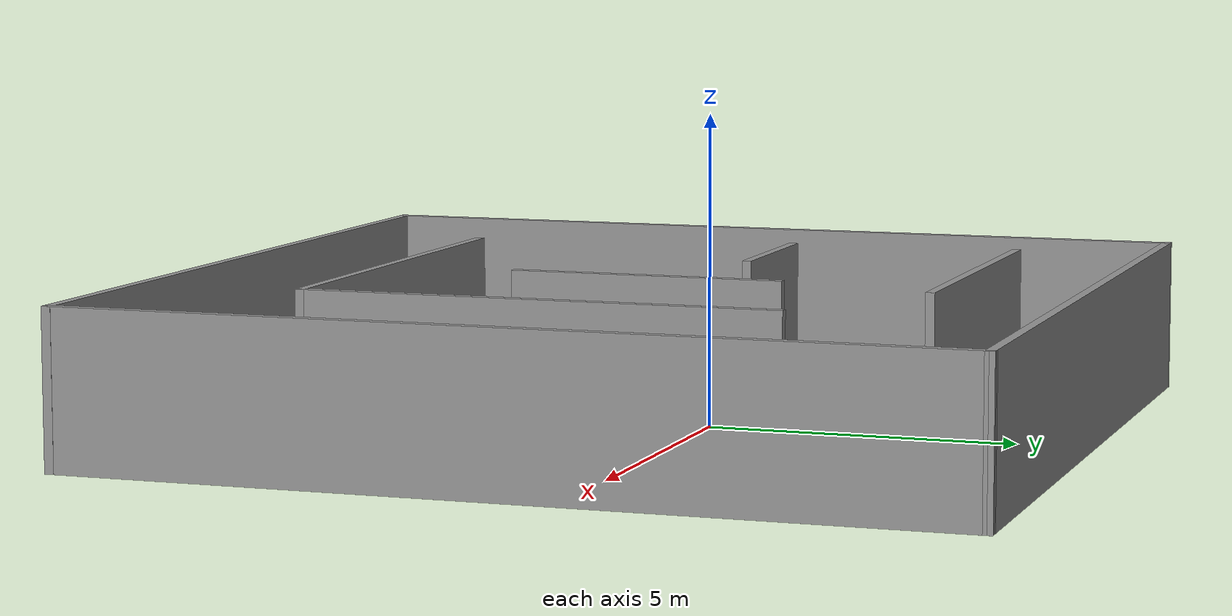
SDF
<?xml version='1.0'?>
<sdf version='1.7'>
  <model name='maze'>
    <pose>0.299643 -0.8901 0 0 -0 0</pose>
    <link name='Wall_104'>
      <collision name='Wall_104_Collision'>
        <geometry>
          <box>
            <size>13.5949 0.15 2.5</size>
          </box>
        </geometry>
        <pose>0 0 1.25 0 -0 0</pose>
      </collision>
      <visual name='Wall_104_Visual'>
        <pose>0 0 1.25 0 -0 0</pose>
        <geometry>
          <box>
            <size>13.5949 0.15 2.5</size>
          </box>
        </geometry>
        <material>
          <script>
            <uri>file://media/materials/scripts/gazebo.material</uri>
            <name>Gazebo/Grey</name>
          </script>
          <ambient>1 1 1 1</ambient>
        </material>
        <meta>
          <layer>0</layer>
        </meta>
      </visual>
      <pose>-0.001104 7.05037 0 0 -0 0.002099</pose>
    </link>
    <link name='Wall_11'>
      <collision name='Wall_11_Collision'>
        <geometry>
          <box>
            <size>14.25 0.15 2.5</size>
          </box>
        </geometry>
        <pose>0 0 1.25 0 -0 0</pose>
      </collision>
      <visual name='Wall_11_Visual'>
        <pose>0 0 1.25 0 -0 0</pose>
        <geometry>
          <box>
            <size>14.25 0.15 2.5</size>
          </box>
        </geometry>
        <material>
          <script>
            <uri>file://media/materials/scripts/gazebo.material</uri>
            <name>Gazebo/Grey</name>
          </script>
          <ambient>1 1 1 1</ambient>
        </material>
        <meta>
          <layer>0</layer>
        </meta>
      </visual>
      <pose>-6.72354 -0.013743 0 0 -0 1.5708</pose>
    </link>
    <link name='Wall_19'>
      <collision name='Wall_19_Collision'>
        <geometry>
          <box>
            <size>13.5 0.15 2.5</size>
          </box>
        </geometry>
        <pose>0 0 1.25 0 -0 0</pose>
      </collision>
      <visual name='Wall_19_Visual'>
        <pose>0 0 1.25 0 -0 0</pose>
        <geometry>
          <box>
            <size>13.5 0.15 2.5</size>
          </box>
        </geometry>
        <material>
          <script>
            <uri>file://media/materials/scripts/gazebo.material</uri>
            <name>Gazebo/Grey</name>
          </script>
          <ambient>1 1 1 1</ambient>
        </material>
        <meta>
          <layer>0</layer>
        </meta>
      </visual>
      <pose>0.048697 -7.06464 0 0 -0 0</pose>
    </link>
    <link name='Wall_28'>
      <collision name='Wall_28_Collision'>
        <geometry>
          <box>
            <size>14.25 0.15 2.5</size>
          </box>
        </geometry>
        <pose>0 0 1.25 0 -0 0</pose>
      </collision>
      <visual name='Wall_28_Visual'>
        <pose>0 0 1.25 0 -0 0</pose>
        <geometry>
          <box>
            <size>14.25 0.15 2.5</size>
          </box>
        </geometry>
        <material>
          <script>
            <uri>file://media/materials/scripts/gazebo.material</uri>
            <name>Gazebo/Grey</name>
          </script>
          <ambient>1 1 1 1</ambient>
        </material>
        <meta>
          <layer>0</layer>
        </meta>
      </visual>
      <pose>6.72133 0.014482 0 0 -0 -1.5708</pose>
    </link>
    <link name='Wall_36'>
      <collision name='Wall_36_Collision'>
        <geometry>
          <box>
            <size>4.5 0.15 2.5</size>
          </box>
        </geometry>
        <pose>0 0 1.25 0 -0 0</pose>
      </collision>
      <visual name='Wall_36_Visual'>
        <pose>0 0 1.25 0 -0 0</pose>
        <geometry>
          <box>
            <size>4.5 0.15 2.5</size>
          </box>
        </geometry>
        <material>
          <script>
            <uri>file://media/materials/scripts/gazebo.material</uri>
            <name>Gazebo/Grey</name>
          </script>
          <ambient>1 1 1 1</ambient>
        </material>
        <meta>
          <layer>0</layer>
        </meta>
      </visual>
      <pose>0.417121 0.061765 0 0 -0 -1.5708</pose>
    </link>
    <link name='Wall_38'>
      <collision name='Wall_38_Collision'>
        <geometry>
          <box>
            <size>2.75 0.15 2.5</size>
          </box>
        </geometry>
        <pose>0 0 1.25 0 -0 0</pose>
      </collision>
      <visual name='Wall_38_Visual'>
        <pose>0 0 1.25 0 -0 0</pose>
        <geometry>
          <box>
            <size>2.75 0.15 2.5</size>
          </box>
        </geometry>
        <material>
          <script>
            <uri>file://media/materials/scripts/gazebo.material</uri>
            <name>Gazebo/Grey</name>
          </script>
          <ambient>1 1 1 1</ambient>
        </material>
        <meta>
          <layer>0</layer>
        </meta>
      </visual>
      <pose>-3.25861 1.00717 0 0 -0 0</pose>
    </link>
    <link name='Wall_40'>
      <collision name='Wall_40_Collision'>
        <geometry>
          <box>
            <size>6 0.15 2.5</size>
          </box>
        </geometry>
        <pose>0 0 1.25 0 -0 0</pose>
      </collision>
      <visual name='Wall_40_Visual'>
        <pose>0 0 1.25 0 -0 0</pose>
        <geometry>
          <box>
            <size>6 0.15 2.5</size>
          </box>
        </geometry>
        <material>
          <script>
            <uri>file://media/materials/scripts/gazebo.material</uri>
            <name>Gazebo/Grey</name>
          </script>
          <ambient>1 1 1 1</ambient>
        </material>
        <meta>
          <layer>0</layer>
        </meta>
      </visual>
      <pose>-1.90466 4.8286 0 0 -0 0</pose>
    </link>
    <link name='Wall_44'>
      <collision name='Wall_44_Collision'>
        <geometry>
          <box>
            <size>7.75 0.15 2.5</size>
          </box>
        </geometry>
        <pose>0 0 1.25 0 -0 0</pose>
      </collision>
      <visual name='Wall_44_Visual'>
        <pose>0 0 1.25 0 -0 0</pose>
        <geometry>
          <box>
            <size>7.75 0.15 2.5</size>
          </box>
        </geometry>
        <material>
          <script>
            <uri>file://media/materials/scripts/gazebo.material</uri>
            <name>Gazebo/Grey</name>
          </script>
          <ambient>1 1 1 1</ambient>
        </material>
        <meta>
          <layer>0</layer>
        </meta>
      </visual>
      <pose>3.72308 -0.572676 0 0 -0 -1.5708</pose>
    </link>
    <link name='Wall_48'>
      <collision name='Wall_48_Collision'>
        <geometry>
          <box>
            <size>7.5 0.15 2.5</size>
          </box>
        </geometry>
        <pose>0 0 1.25 0 -0 0</pose>
      </collision>
      <visual name='Wall_48_Visual'>
        <pose>0 0 1.25 0 -0 0</pose>
        <geometry>
          <box>
            <size>7.5 0.15 2.5</size>
          </box>
        </geometry>
        <material>
          <script>
            <uri>file://media/materials/scripts/gazebo.material</uri>
            <name>Gazebo/Grey</name>
          </script>
          <ambient>1 1 1 1</ambient>
        </material>
        <meta>
          <layer>0</layer>
        </meta>
      </visual>
      <pose>0.048079 -4.37268 0 0 -0 3.14159</pose>
    </link>
    <static>1</static>
  </model>
</sdf>
